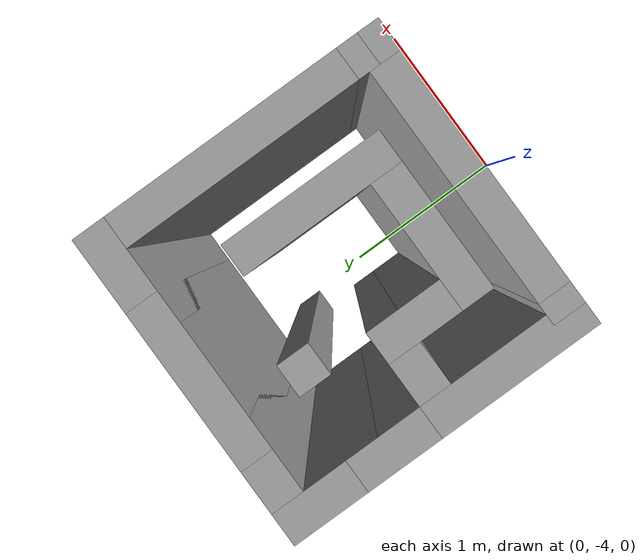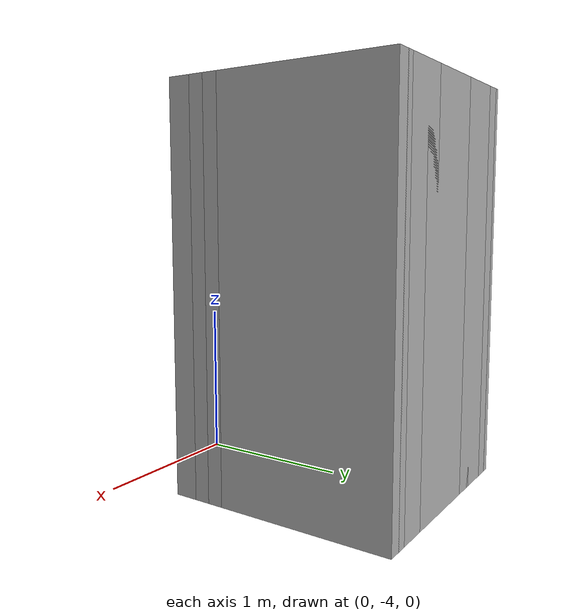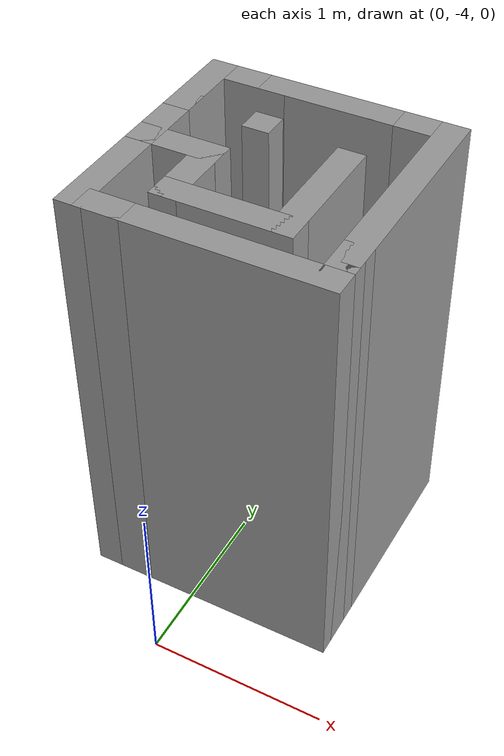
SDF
<?xml version='1.0'?>
<sdf version='1.7'>
  <model name='my_house'>
    <pose>0.105527 -1.80743 0 0 -0 0</pose>
    <link name='Wall_0'>
      <collision name='Wall_0_Collision'>
        <geometry>
          <box>
            <size>0.75 0.15 2.5</size>
          </box>
        </geometry>
        <pose>0 0 1.25 0 -0 0</pose>
      </collision>
      <visual name='Wall_0_Visual'>
        <pose>0 0 1.25 0 -0 0</pose>
        <geometry>
          <box>
            <size>0.75 0.15 2.5</size>
          </box>
        </geometry>
        <material>
          <script>
            <uri>file://media/materials/scripts/gazebo.material</uri>
            <name>Gazebo/Grey</name>
          </script>
          <ambient>1 1 1 1</ambient>
        </material>
        <meta>
          <layer>0</layer>
        </meta>
      </visual>
      <pose>0.3 -1.18243 0 0 -0 -1.5708</pose>
    </link>
    <link name='Wall_1'>
      <collision name='Wall_1_Collision'>
        <geometry>
          <box>
            <size>0.75 0.15 2.5</size>
          </box>
        </geometry>
        <pose>0 0 1.25 0 -0 0</pose>
      </collision>
      <visual name='Wall_1_Visual'>
        <pose>0 0 1.25 0 -0 0</pose>
        <geometry>
          <box>
            <size>0.75 0.15 2.5</size>
          </box>
        </geometry>
        <material>
          <script>
            <uri>file://media/materials/scripts/gazebo.material</uri>
            <name>Gazebo/Grey</name>
          </script>
          <ambient>1 1 1 1</ambient>
        </material>
        <meta>
          <layer>0</layer>
        </meta>
      </visual>
      <pose>-0 -1.48243 0 0 -0 3.14159</pose>
    </link>
    <link name='Wall_13'>
      <collision name='Wall_13_Collision'>
        <geometry>
          <box>
            <size>0.75 0.15 2.5</size>
          </box>
        </geometry>
        <pose>0 0 1.25 0 -0 0</pose>
      </collision>
      <visual name='Wall_13_Visual'>
        <pose>0 0 1.25 0 -0 0</pose>
        <geometry>
          <box>
            <size>0.75 0.15 2.5</size>
          </box>
        </geometry>
        <material>
          <script>
            <uri>file://media/materials/scripts/gazebo.material</uri>
            <name>Gazebo/Grey</name>
          </script>
          <ambient>1 1 1 1</ambient>
        </material>
        <meta>
          <layer>0</layer>
        </meta>
      </visual>
      <pose>-0 -0.43243 0 0 -0 0</pose>
    </link>
    <link name='Wall_14'>
      <collision name='Wall_14_Collision'>
        <geometry>
          <box>
            <size>0.5 0.15 2.5</size>
          </box>
        </geometry>
        <pose>0 0 1.25 0 -0 0</pose>
      </collision>
      <visual name='Wall_14_Visual'>
        <pose>0 0 1.25 0 -0 0</pose>
        <geometry>
          <box>
            <size>0.5 0.15 2.5</size>
          </box>
        </geometry>
        <material>
          <script>
            <uri>file://media/materials/scripts/gazebo.material</uri>
            <name>Gazebo/Grey</name>
          </script>
          <ambient>1 1 1 1</ambient>
        </material>
        <meta>
          <layer>0</layer>
        </meta>
      </visual>
      <pose>0.475 -0.43243 0 0 -0 0</pose>
    </link>
    <link name='Wall_15'>
      <collision name='Wall_15_Collision'>
        <geometry>
          <box>
            <size>1.25 0.15 2.5</size>
          </box>
        </geometry>
        <pose>0 0 1.25 0 -0 0</pose>
      </collision>
      <visual name='Wall_15_Visual'>
        <pose>0 0 1.25 0 -0 0</pose>
        <geometry>
          <box>
            <size>1.25 0.15 2.5</size>
          </box>
        </geometry>
        <material>
          <script>
            <uri>file://media/materials/scripts/gazebo.material</uri>
            <name>Gazebo/Grey</name>
          </script>
          <ambient>1 1 1 1</ambient>
        </material>
        <meta>
          <layer>0</layer>
        </meta>
      </visual>
      <pose>0.65 -0.98243 0 0 -0 -1.5708</pose>
    </link>
    <link name='Wall_16'>
      <collision name='Wall_16_Collision'>
        <geometry>
          <box>
            <size>0.25 0.15 2.5</size>
          </box>
        </geometry>
        <pose>0 0 1.25 0 -0 0</pose>
      </collision>
      <visual name='Wall_16_Visual'>
        <pose>0 0 1.25 0 -0 0</pose>
        <geometry>
          <box>
            <size>0.25 0.15 2.5</size>
          </box>
        </geometry>
        <material>
          <script>
            <uri>file://media/materials/scripts/gazebo.material</uri>
            <name>Gazebo/Grey</name>
          </script>
          <ambient>1 1 1 1</ambient>
        </material>
        <meta>
          <layer>0</layer>
        </meta>
      </visual>
      <pose>0.65 -1.58243 0 0 -0 -1.5708</pose>
    </link>
    <link name='Wall_17'>
      <collision name='Wall_17_Collision'>
        <geometry>
          <box>
            <size>0.25 0.15 2.5</size>
          </box>
        </geometry>
        <pose>0 0 1.25 0 -0 0</pose>
      </collision>
      <visual name='Wall_17_Visual'>
        <pose>0 0 1.25 0 -0 0</pose>
        <geometry>
          <box>
            <size>0.25 0.15 2.5</size>
          </box>
        </geometry>
        <material>
          <script>
            <uri>file://media/materials/scripts/gazebo.material</uri>
            <name>Gazebo/Grey</name>
          </script>
          <ambient>1 1 1 1</ambient>
        </material>
        <meta>
          <layer>0</layer>
        </meta>
      </visual>
      <pose>0.65 -1.68243 0 0 -0 -1.5708</pose>
    </link>
    <link name='Wall_18'>
      <collision name='Wall_18_Collision'>
        <geometry>
          <box>
            <size>1.25 0.15 2.5</size>
          </box>
        </geometry>
        <pose>0 0 1.25 0 -0 0</pose>
      </collision>
      <visual name='Wall_18_Visual'>
        <pose>0 0 1.25 0 -0 0</pose>
        <geometry>
          <box>
            <size>1.25 0.15 2.5</size>
          </box>
        </geometry>
        <material>
          <script>
            <uri>file://media/materials/scripts/gazebo.material</uri>
            <name>Gazebo/Grey</name>
          </script>
          <ambient>1 1 1 1</ambient>
        </material>
        <meta>
          <layer>0</layer>
        </meta>
      </visual>
      <pose>0.1 -1.73243 0 0 -0 3.14159</pose>
    </link>
    <link name='Wall_19'>
      <collision name='Wall_19_Collision'>
        <geometry>
          <box>
            <size>0.25 0.15 2.5</size>
          </box>
        </geometry>
        <pose>0 0 1.25 0 -0 0</pose>
      </collision>
      <visual name='Wall_19_Visual'>
        <pose>0 0 1.25 0 -0 0</pose>
        <geometry>
          <box>
            <size>0.25 0.15 2.5</size>
          </box>
        </geometry>
        <material>
          <script>
            <uri>file://media/materials/scripts/gazebo.material</uri>
            <name>Gazebo/Grey</name>
          </script>
          <ambient>1 1 1 1</ambient>
        </material>
        <meta>
          <layer>0</layer>
        </meta>
      </visual>
      <pose>-0.5 -1.73243 0 0 -0 3.14159</pose>
    </link>
    <link name='Wall_2'>
      <collision name='Wall_2_Collision'>
        <geometry>
          <box>
            <size>0.5 0.15 2.5</size>
          </box>
        </geometry>
        <pose>0 0 1.25 0 -0 0</pose>
      </collision>
      <visual name='Wall_2_Visual'>
        <pose>0 0 1.25 0 -0 0</pose>
        <geometry>
          <box>
            <size>0.5 0.15 2.5</size>
          </box>
        </geometry>
        <material>
          <script>
            <uri>file://media/materials/scripts/gazebo.material</uri>
            <name>Gazebo/Grey</name>
          </script>
          <ambient>1 1 1 1</ambient>
        </material>
        <meta>
          <layer>0</layer>
        </meta>
      </visual>
      <pose>-0.3 -1.30743 0 0 -0 1.5708</pose>
    </link>
    <link name='Wall_22'>
      <collision name='Wall_22_Collision'>
        <geometry>
          <box>
            <size>0.75 0.15 2.5</size>
          </box>
        </geometry>
        <pose>0 0 1.25 0 -0 0</pose>
      </collision>
      <visual name='Wall_22_Visual'>
        <pose>0 0 1.25 0 -0 0</pose>
        <geometry>
          <box>
            <size>0.75 0.15 2.5</size>
          </box>
        </geometry>
        <material>
          <script>
            <uri>file://media/materials/scripts/gazebo.material</uri>
            <name>Gazebo/Grey</name>
          </script>
          <ambient>1 1 1 1</ambient>
        </material>
        <meta>
          <layer>0</layer>
        </meta>
      </visual>
      <pose>-0.65 -1.43243 0 0 -0 -1.5708</pose>
    </link>
    <link name='Wall_3'>
      <collision name='Wall_3_Collision'>
        <geometry>
          <box>
            <size>0.5 0.15 2.5</size>
          </box>
        </geometry>
        <pose>0 0 1.25 0 -0 0</pose>
      </collision>
      <visual name='Wall_3_Visual'>
        <pose>0 0 1.25 0 -0 0</pose>
        <geometry>
          <box>
            <size>0.5 0.15 2.5</size>
          </box>
        </geometry>
        <material>
          <script>
            <uri>file://media/materials/scripts/gazebo.material</uri>
            <name>Gazebo/Grey</name>
          </script>
          <ambient>1 1 1 1</ambient>
        </material>
        <meta>
          <layer>0</layer>
        </meta>
      </visual>
      <pose>-0.475 -1.13243 0 0 -0 3.14159</pose>
    </link>
    <link name='Wall_4'>
      <collision name='Wall_4_Collision'>
        <geometry>
          <box>
            <size>0.5 0.15 2.5</size>
          </box>
        </geometry>
        <pose>0 0 1.25 0 -0 0</pose>
      </collision>
      <visual name='Wall_4_Visual'>
        <pose>0 0 1.25 0 -0 0</pose>
        <geometry>
          <box>
            <size>0.5 0.15 2.5</size>
          </box>
        </geometry>
        <material>
          <script>
            <uri>file://media/materials/scripts/gazebo.material</uri>
            <name>Gazebo/Grey</name>
          </script>
          <ambient>1 1 1 1</ambient>
        </material>
        <meta>
          <layer>0</layer>
        </meta>
      </visual>
      <pose>-0.65 -0.95743 0 0 -0 1.5708</pose>
    </link>
    <link name='Wall_5'>
      <collision name='Wall_5_Collision'>
        <geometry>
          <box>
            <size>0.5 0.15 2.5</size>
          </box>
        </geometry>
        <pose>0 0 1.25 0 -0 0</pose>
      </collision>
      <visual name='Wall_5_Visual'>
        <pose>0 0 1.25 0 -0 0</pose>
        <geometry>
          <box>
            <size>0.5 0.15 2.5</size>
          </box>
        </geometry>
        <material>
          <script>
            <uri>file://media/materials/scripts/gazebo.material</uri>
            <name>Gazebo/Grey</name>
          </script>
          <ambient>1 1 1 1</ambient>
        </material>
        <meta>
          <layer>0</layer>
        </meta>
      </visual>
      <pose>-0.65 -0.60743 0 0 -0 1.5708</pose>
    </link>
    <link name='Wall_6'>
      <collision name='Wall_6_Collision'>
        <geometry>
          <box>
            <size>0.5 0.15 2.5</size>
          </box>
        </geometry>
        <pose>0 0 1.25 0 -0 0</pose>
      </collision>
      <visual name='Wall_6_Visual'>
        <pose>0 0 1.25 0 -0 0</pose>
        <geometry>
          <box>
            <size>0.5 0.15 2.5</size>
          </box>
        </geometry>
        <material>
          <script>
            <uri>file://media/materials/scripts/gazebo.material</uri>
            <name>Gazebo/Grey</name>
          </script>
          <ambient>1 1 1 1</ambient>
        </material>
        <meta>
          <layer>0</layer>
        </meta>
      </visual>
      <pose>-0.475 -0.43243 0 0 -0 0</pose>
    </link>
    <link name='Wall_9'>
      <collision name='Wall_9_Collision'>
        <geometry>
          <box>
            <size>0.15 0.15 2.5</size>
          </box>
        </geometry>
        <pose>0 0 1.25 0 -0 0</pose>
      </collision>
      <visual name='Wall_9_Visual'>
        <pose>0 0 1.25 0 -0 0</pose>
        <geometry>
          <box>
            <size>0.15 0.15 2.5</size>
          </box>
        </geometry>
        <material>
          <script>
            <uri>file://media/materials/scripts/gazebo.material</uri>
            <name>Gazebo/Grey</name>
          </script>
          <ambient>1 1 1 1</ambient>
        </material>
        <meta>
          <layer>0</layer>
        </meta>
      </visual>
      <pose>-0.2 -0.78243 0 0 -0 0</pose>
    </link>
    <static>1</static>
  </model>
</sdf>
